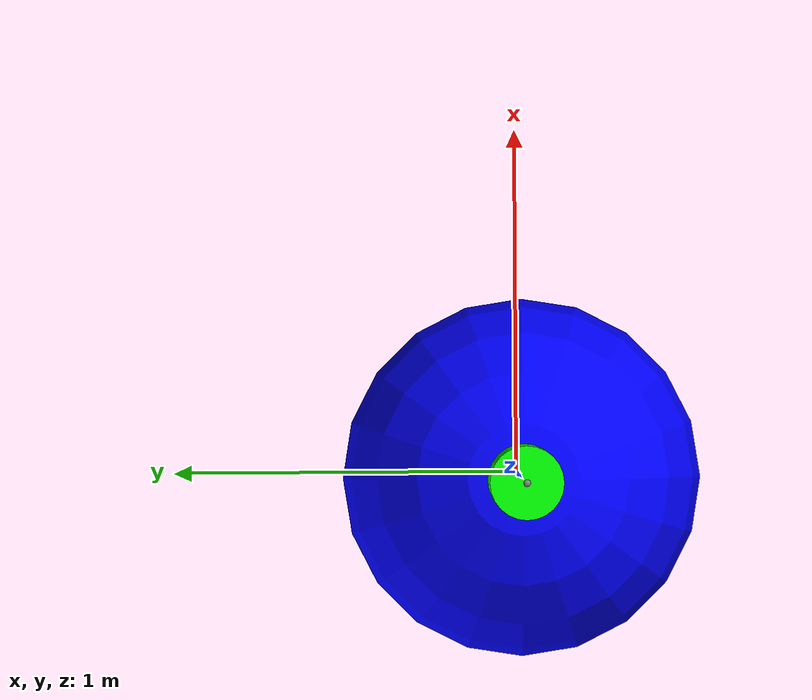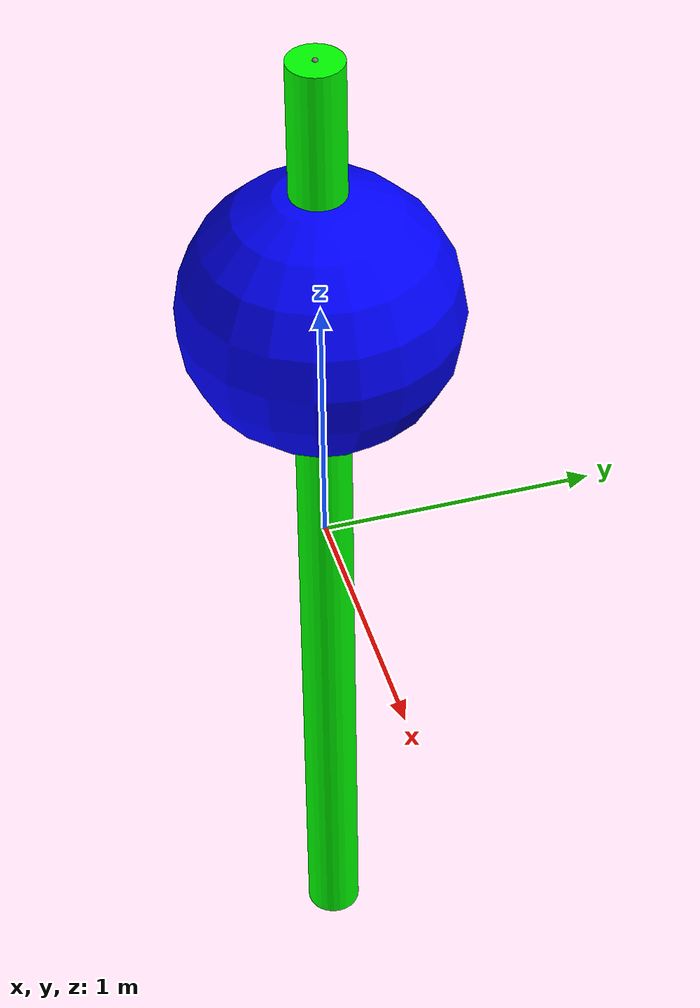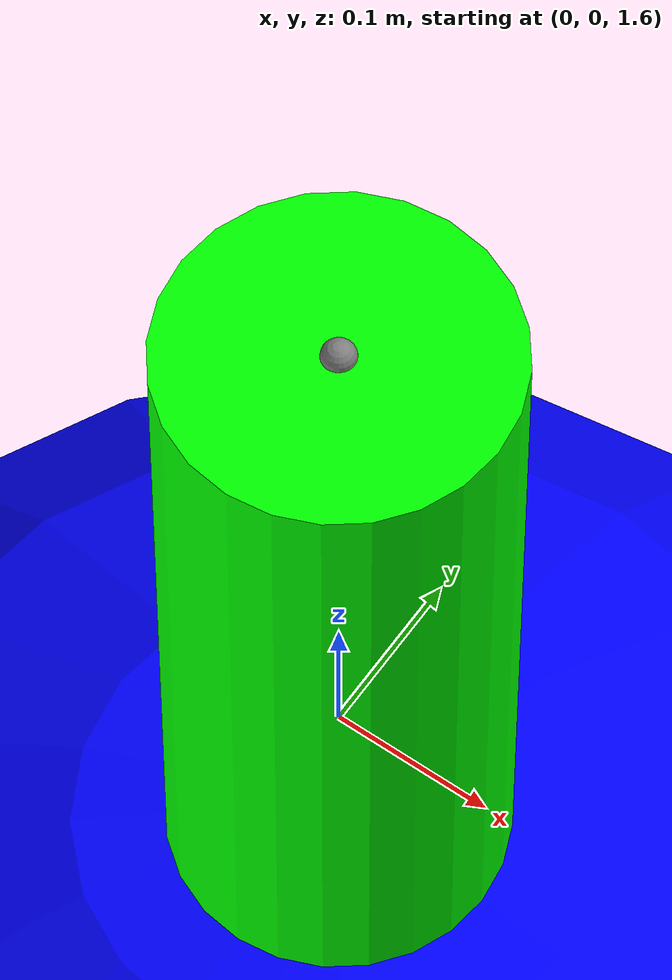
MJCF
<mujoco>
  <option gravity="0 0 -9.81" />
  <worldbody>
    <body name="object_1" pos="0 0 0">
      <geom type="cylinder" size="0.1 2" density="3" rgba="0 1 0 1" />
      <joint name="object_1_joint" type="hinge" axis="0 0 1" />
      <site name="object_1_site" pos="0 0 2" size="0.01" />
    </body>
    <body name="object_2" pos="0 0 1">
      <geom type="sphere" size="0.5" mass="2" rgba="0 0 1 1" />
      <joint name="object_2_joint" type="free" />
      <site name="object_2_site" pos="0 0 0" size="0.01" />
    </body>
    <body name="object_3" pos="0 0 -10">
      <geom type="plane" size="30 30 0.1" rgba="0.7 0.7 0.7 1" friction="1 1 1" />
    </body>
  </worldbody>
  <tendon>
    <spatial name="spring" width="0.01" stiffness="300">
      <site site="object_1_site" />
      <site site="object_2_site" />
    </spatial>
  </tendon>
</mujoco>
